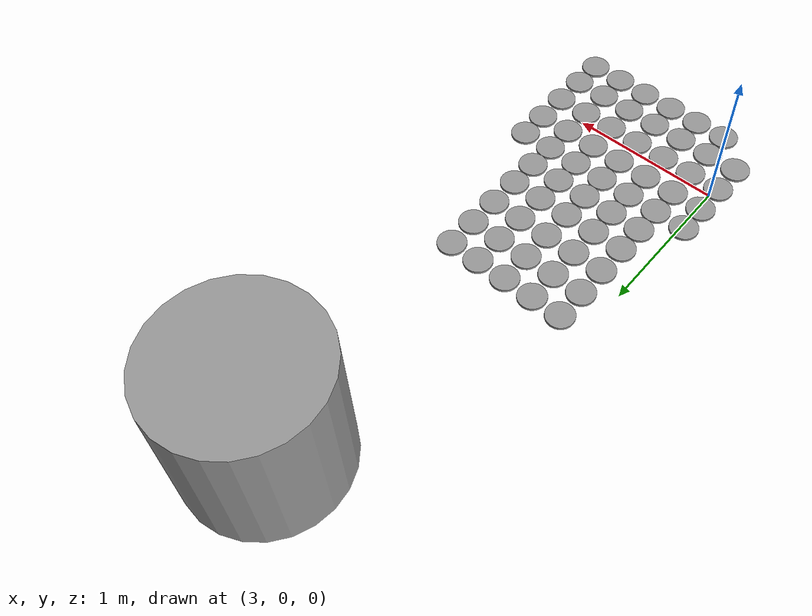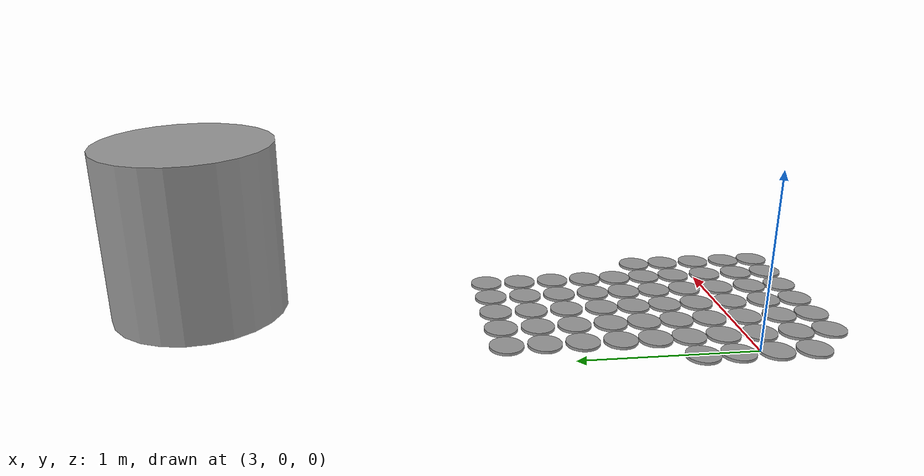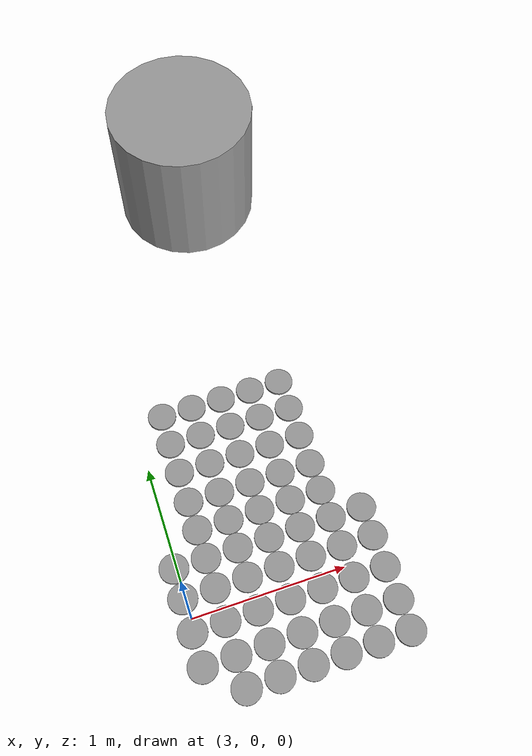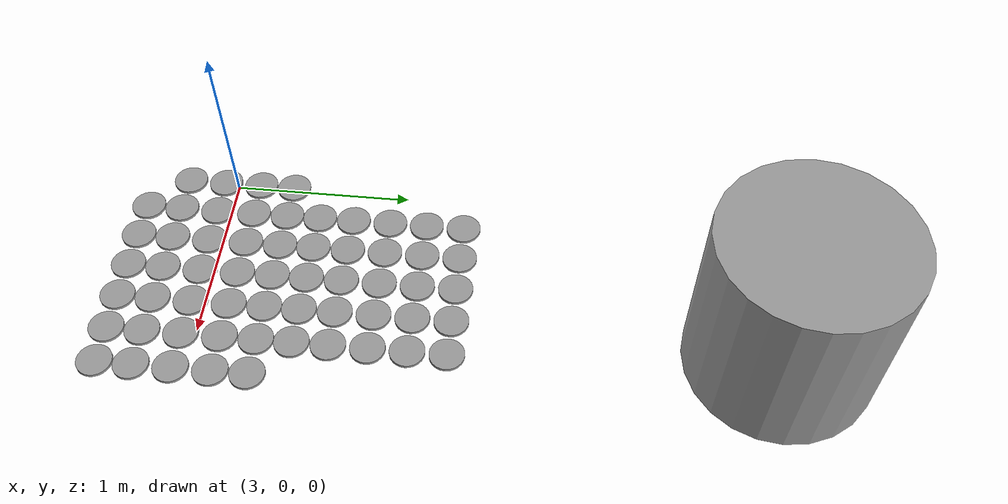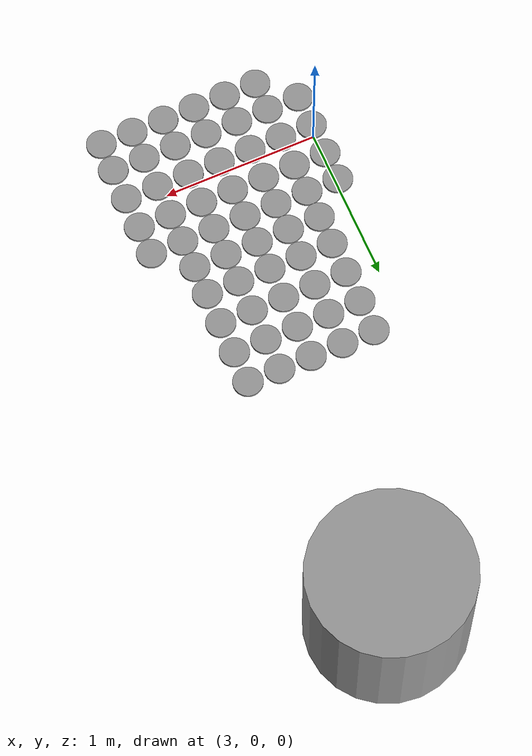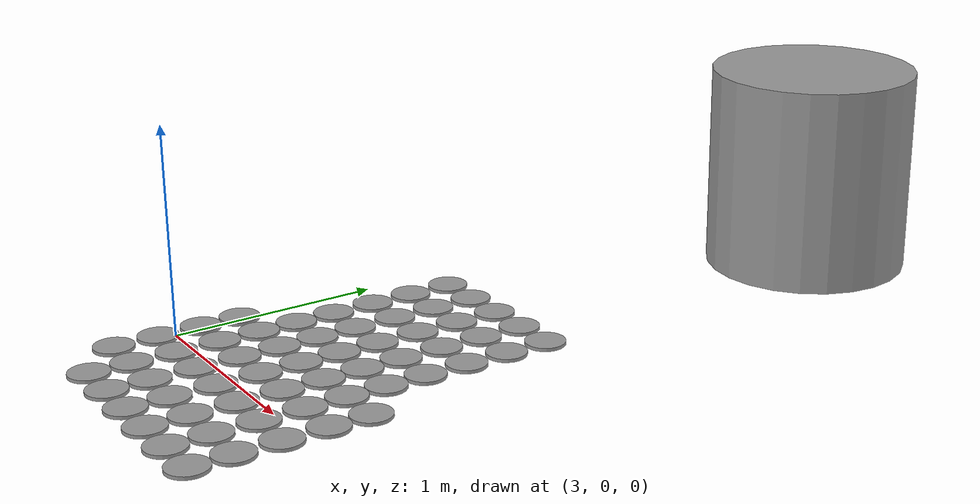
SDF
<sdf version="1.6">
 <world name="default">
  <model name="unit_cylinder_clone_195">
   <pose>3.19 0.515077 0.008117 0 -0 0</pose>
   <link name="link">
    <inertial>
     <mass>1</mass>
     <inertia><ixx>0.145833</ixx><ixy>0</ixy><ixz>0</ixz><iyy>0.145833</iyy><iyz>0</iyz><izz>0.125</izz></inertia>
    </inertial>
    <collision name="collision">
     <geometry><cylinder><radius>0.0950718</radius><length>0.0162339</length></cylinder></geometry>
     <max_contacts>5</max_contacts>
    </collision>
    <visual name="visual">
     <geometry><cylinder><radius>0.0950718</radius><length>0.0162339</length></cylinder></geometry>
     <material>
      <script><name>Gazebo/Grey</name><uri>file://media/materials/scripts/gazebo.material</uri></script>
     </material>
    </visual>
   </link>
  </model>
  <model name="unit_cylinder_clone_196">
   <pose>3.19 0.71 0.008117 0 -0 0</pose>
   <link name="link">
    <inertial>
     <mass>1</mass>
     <inertia><ixx>0.145833</ixx><ixy>0</ixy><ixz>0</ixz><iyy>0.145833</iyy><iyz>0</iyz><izz>0.125</izz></inertia>
    </inertial>
    <collision name="collision">
     <geometry><cylinder><radius>0.0950718</radius><length>0.0162339</length></cylinder></geometry>
     <max_contacts>5</max_contacts>
    </collision>
    <visual name="visual">
     <geometry><cylinder><radius>0.0950718</radius><length>0.0162339</length></cylinder></geometry>
     <material>
      <script><name>Gazebo/Grey</name><uri>file://media/materials/scripts/gazebo.material</uri></script>
     </material>
    </visual>
   </link>
  </model>
  <model name="unit_cylinder_clone_197">
   <pose>3.19 0.92 0.008117 0 -0 0</pose>
   <link name="link">
    <inertial>
     <mass>1</mass>
     <inertia><ixx>0.145833</ixx><ixy>0</ixy><ixz>0</ixz><iyy>0.145833</iyy><iyz>0</iyz><izz>0.125</izz></inertia>
    </inertial>
    <collision name="collision">
     <geometry><cylinder><radius>0.0950718</radius><length>0.0162339</length></cylinder></geometry>
     <max_contacts>5</max_contacts>
    </collision>
    <visual name="visual">
     <geometry><cylinder><radius>0.0950718</radius><length>0.0162339</length></cylinder></geometry>
     <material>
      <script><name>Gazebo/Grey</name><uri>file://media/materials/scripts/gazebo.material</uri></script>
     </material>
    </visual>
   </link>
  </model>
  <model name="unit_cylinder_clone_198">
   <pose>3.19 1.13 0.008117 0 -0 0</pose>
   <link name="link">
    <inertial>
     <mass>1</mass>
     <inertia><ixx>0.145833</ixx><ixy>0</ixy><ixz>0</ixz><iyy>0.145833</iyy><iyz>0</iyz><izz>0.125</izz></inertia>
    </inertial>
    <collision name="collision">
     <geometry><cylinder><radius>0.0950718</radius><length>0.0162339</length></cylinder></geometry>
     <max_contacts>5</max_contacts>
    </collision>
    <visual name="visual">
     <geometry><cylinder><radius>0.0950718</radius><length>0.0162339</length></cylinder></geometry>
     <material>
      <script><name>Gazebo/Grey</name><uri>file://media/materials/scripts/gazebo.material</uri></script>
     </material>
    </visual>
   </link>
  </model>
  <model name="unit_cylinder_clone_199">
   <pose>3.19 1.34 0.008117 0 -0 0</pose>
   <link name="link">
    <inertial>
     <mass>1</mass>
     <inertia><ixx>0.145833</ixx><ixy>0</ixy><ixz>0</ixz><iyy>0.145833</iyy><iyz>0</iyz><izz>0.125</izz></inertia>
    </inertial>
    <collision name="collision">
     <geometry><cylinder><radius>0.0950718</radius><length>0.0162339</length></cylinder></geometry>
     <max_contacts>5</max_contacts>
    </collision>
    <visual name="visual">
     <geometry><cylinder><radius>0.0950718</radius><length>0.0162339</length></cylinder></geometry>
     <material>
      <script><name>Gazebo/Grey</name><uri>file://media/materials/scripts/gazebo.material</uri></script>
     </material>
    </visual>
   </link>
  </model>
  <model name="unit_cylinder_clone_200">
   <pose>3.4 0.515077 0.008117 0 -0 0</pose>
   <link name="link">
    <inertial>
     <mass>1</mass>
     <inertia><ixx>0.145833</ixx><ixy>0</ixy><ixz>0</ixz><iyy>0.145833</iyy><iyz>0</iyz><izz>0.125</izz></inertia>
    </inertial>
    <collision name="collision">
     <geometry><cylinder><radius>0.0950718</radius><length>0.0162339</length></cylinder></geometry>
     <max_contacts>5</max_contacts>
    </collision>
    <visual name="visual">
     <geometry><cylinder><radius>0.0950718</radius><length>0.0162339</length></cylinder></geometry>
     <material>
      <script><name>Gazebo/Grey</name><uri>file://media/materials/scripts/gazebo.material</uri></script>
     </material>
    </visual>
   </link>
  </model>
  <model name="unit_cylinder_clone_201">
   <pose>3.4 0.71 0.008117 0 -0 0</pose>
   <link name="link">
    <inertial>
     <mass>1</mass>
     <inertia><ixx>0.145833</ixx><ixy>0</ixy><ixz>0</ixz><iyy>0.145833</iyy><iyz>0</iyz><izz>0.125</izz></inertia>
    </inertial>
    <collision name="collision">
     <geometry><cylinder><radius>0.0950718</radius><length>0.0162339</length></cylinder></geometry>
     <max_contacts>5</max_contacts>
    </collision>
    <visual name="visual">
     <geometry><cylinder><radius>0.0950718</radius><length>0.0162339</length></cylinder></geometry>
     <material>
      <script><name>Gazebo/Grey</name><uri>file://media/materials/scripts/gazebo.material</uri></script>
     </material>
    </visual>
   </link>
  </model>
  <model name="unit_cylinder_clone_202">
   <pose>3.4 0.92 0.008117 0 -0 0</pose>
   <link name="link">
    <inertial>
     <mass>1</mass>
     <inertia><ixx>0.145833</ixx><ixy>0</ixy><ixz>0</ixz><iyy>0.145833</iyy><iyz>0</iyz><izz>0.125</izz></inertia>
    </inertial>
    <collision name="collision">
     <geometry><cylinder><radius>0.0950718</radius><length>0.0162339</length></cylinder></geometry>
     <max_contacts>5</max_contacts>
    </collision>
    <visual name="visual">
     <geometry><cylinder><radius>0.0950718</radius><length>0.0162339</length></cylinder></geometry>
     <material>
      <script><name>Gazebo/Grey</name><uri>file://media/materials/scripts/gazebo.material</uri></script>
     </material>
    </visual>
   </link>
  </model>
  <model name="unit_cylinder_clone_203">
   <pose>3.4 1.13 0.008117 0 -0 0</pose>
   <link name="link">
    <inertial>
     <mass>1</mass>
     <inertia><ixx>0.145833</ixx><ixy>0</ixy><ixz>0</ixz><iyy>0.145833</iyy><iyz>0</iyz><izz>0.125</izz></inertia>
    </inertial>
    <collision name="collision">
     <geometry><cylinder><radius>0.0950718</radius><length>0.0162339</length></cylinder></geometry>
     <max_contacts>5</max_contacts>
    </collision>
    <visual name="visual">
     <geometry><cylinder><radius>0.0950718</radius><length>0.0162339</length></cylinder></geometry>
     <material>
      <script><name>Gazebo/Grey</name><uri>file://media/materials/scripts/gazebo.material</uri></script>
     </material>
    </visual>
   </link>
  </model>
  <model name="unit_cylinder_clone_204">
   <pose>3.4 1.34 0.008117 0 -0 0</pose>
   <link name="link">
    <inertial>
     <mass>1</mass>
     <inertia><ixx>0.145833</ixx><ixy>0</ixy><ixz>0</ixz><iyy>0.145833</iyy><iyz>0</iyz><izz>0.125</izz></inertia>
    </inertial>
    <collision name="collision">
     <geometry><cylinder><radius>0.0950718</radius><length>0.0162339</length></cylinder></geometry>
     <max_contacts>5</max_contacts>
    </collision>
    <visual name="visual">
     <geometry><cylinder><radius>0.0950718</radius><length>0.0162339</length></cylinder></geometry>
     <material>
      <script><name>Gazebo/Grey</name><uri>file://media/materials/scripts/gazebo.material</uri></script>
     </material>
    </visual>
   </link>
  </model>
  <model name="unit_cylinder_clone_205">
   <pose>3.61 0.515077 0.008117 0 -0 0</pose>
   <link name="link">
    <inertial>
     <mass>1</mass>
     <inertia><ixx>0.145833</ixx><ixy>0</ixy><ixz>0</ixz><iyy>0.145833</iyy><iyz>0</iyz><izz>0.125</izz></inertia>
    </inertial>
    <collision name="collision">
     <geometry><cylinder><radius>0.0950718</radius><length>0.0162339</length></cylinder></geometry>
     <max_contacts>5</max_contacts>
    </collision>
    <visual name="visual">
     <geometry><cylinder><radius>0.0950718</radius><length>0.0162339</length></cylinder></geometry>
     <material>
      <script><name>Gazebo/Grey</name><uri>file://media/materials/scripts/gazebo.material</uri></script>
     </material>
    </visual>
   </link>
  </model>
  <model name="unit_cylinder_clone_206">
   <pose>3.61 0.71 0.008117 0 -0 0</pose>
   <link name="link">
    <inertial>
     <mass>1</mass>
     <inertia><ixx>0.145833</ixx><ixy>0</ixy><ixz>0</ixz><iyy>0.145833</iyy><iyz>0</iyz><izz>0.125</izz></inertia>
    </inertial>
    <collision name="collision">
     <geometry><cylinder><radius>0.0950718</radius><length>0.0162339</length></cylinder></geometry>
     <max_contacts>5</max_contacts>
    </collision>
    <visual name="visual">
     <geometry><cylinder><radius>0.0950718</radius><length>0.0162339</length></cylinder></geometry>
     <material>
      <script><name>Gazebo/Grey</name><uri>file://media/materials/scripts/gazebo.material</uri></script>
     </material>
    </visual>
   </link>
  </model>
  <model name="unit_cylinder_clone_207">
   <pose>3.61 0.92 0.008117 0 -0 0</pose>
   <link name="link">
    <inertial>
     <mass>1</mass>
     <inertia><ixx>0.145833</ixx><ixy>0</ixy><ixz>0</ixz><iyy>0.145833</iyy><iyz>0</iyz><izz>0.125</izz></inertia>
    </inertial>
    <collision name="collision">
     <geometry><cylinder><radius>0.0950718</radius><length>0.0162339</length></cylinder></geometry>
     <max_contacts>5</max_contacts>
    </collision>
    <visual name="visual">
     <geometry><cylinder><radius>0.0950718</radius><length>0.0162339</length></cylinder></geometry>
     <material>
      <script><name>Gazebo/Grey</name><uri>file://media/materials/scripts/gazebo.material</uri></script>
     </material>
    </visual>
   </link>
  </model>
  <model name="unit_cylinder_clone_208">
   <pose>3.61 1.13 0.008117 0 -0 0</pose>
   <link name="link">
    <inertial>
     <mass>1</mass>
     <inertia><ixx>0.145833</ixx><ixy>0</ixy><ixz>0</ixz><iyy>0.145833</iyy><iyz>0</iyz><izz>0.125</izz></inertia>
    </inertial>
    <collision name="collision">
     <geometry><cylinder><radius>0.0950718</radius><length>0.0162339</length></cylinder></geometry>
     <max_contacts>5</max_contacts>
    </collision>
    <visual name="visual">
     <geometry><cylinder><radius>0.0950718</radius><length>0.0162339</length></cylinder></geometry>
     <material>
      <script><name>Gazebo/Grey</name><uri>file://media/materials/scripts/gazebo.material</uri></script>
     </material>
    </visual>
   </link>
  </model>
  <model name="unit_cylinder_clone_209">
   <pose>3.61 1.34 0.008117 0 -0 0</pose>
   <link name="link">
    <inertial>
     <mass>1</mass>
     <inertia><ixx>0.145833</ixx><ixy>0</ixy><ixz>0</ixz><iyy>0.145833</iyy><iyz>0</iyz><izz>0.125</izz></inertia>
    </inertial>
    <collision name="collision">
     <geometry><cylinder><radius>0.0950718</radius><length>0.0162339</length></cylinder></geometry>
     <max_contacts>5</max_contacts>
    </collision>
    <visual name="visual">
     <geometry><cylinder><radius>0.0950718</radius><length>0.0162339</length></cylinder></geometry>
     <material>
      <script><name>Gazebo/Grey</name><uri>file://media/materials/scripts/gazebo.material</uri></script>
     </material>
    </visual>
   </link>
  </model>
  <model name="unit_cylinder_clone_210">
   <pose>3.82 0.515077 0.008117 0 -0 0</pose>
   <link name="link">
    <inertial>
     <mass>1</mass>
     <inertia><ixx>0.145833</ixx><ixy>0</ixy><ixz>0</ixz><iyy>0.145833</iyy><iyz>0</iyz><izz>0.125</izz></inertia>
    </inertial>
    <collision name="collision">
     <geometry><cylinder><radius>0.0950718</radius><length>0.0162339</length></cylinder></geometry>
     <max_contacts>5</max_contacts>
    </collision>
    <visual name="visual">
     <geometry><cylinder><radius>0.0950718</radius><length>0.0162339</length></cylinder></geometry>
     <material>
      <script><name>Gazebo/Grey</name><uri>file://media/materials/scripts/gazebo.material</uri></script>
     </material>
    </visual>
   </link>
  </model>
  <model name="unit_cylinder_clone_211">
   <pose>3.82 0.71 0.008117 0 -0 0</pose>
   <link name="link">
    <inertial>
     <mass>1</mass>
     <inertia><ixx>0.145833</ixx><ixy>0</ixy><ixz>0</ixz><iyy>0.145833</iyy><iyz>0</iyz><izz>0.125</izz></inertia>
    </inertial>
    <collision name="collision">
     <geometry><cylinder><radius>0.0950718</radius><length>0.0162339</length></cylinder></geometry>
     <max_contacts>5</max_contacts>
    </collision>
    <visual name="visual">
     <geometry><cylinder><radius>0.0950718</radius><length>0.0162339</length></cylinder></geometry>
     <material>
      <script><name>Gazebo/Grey</name><uri>file://media/materials/scripts/gazebo.material</uri></script>
     </material>
    </visual>
   </link>
  </model>
  <model name="unit_cylinder_clone_212">
   <pose>3.82 0.92 0.008117 0 -0 0</pose>
   <link name="link">
    <inertial>
     <mass>1</mass>
     <inertia><ixx>0.145833</ixx><ixy>0</ixy><ixz>0</ixz><iyy>0.145833</iyy><iyz>0</iyz><izz>0.125</izz></inertia>
    </inertial>
    <collision name="collision">
     <geometry><cylinder><radius>0.0950718</radius><length>0.0162339</length></cylinder></geometry>
     <max_contacts>5</max_contacts>
    </collision>
    <visual name="visual">
     <geometry><cylinder><radius>0.0950718</radius><length>0.0162339</length></cylinder></geometry>
     <material>
      <script><name>Gazebo/Grey</name><uri>file://media/materials/scripts/gazebo.material</uri></script>
     </material>
    </visual>
   </link>
  </model>
  <model name="unit_cylinder_clone_213">
   <pose>3.82 1.13 0.008117 0 -0 0</pose>
   <link name="link">
    <inertial>
     <mass>1</mass>
     <inertia><ixx>0.145833</ixx><ixy>0</ixy><ixz>0</ixz><iyy>0.145833</iyy><iyz>0</iyz><izz>0.125</izz></inertia>
    </inertial>
    <collision name="collision">
     <geometry><cylinder><radius>0.0950718</radius><length>0.0162339</length></cylinder></geometry>
     <max_contacts>5</max_contacts>
    </collision>
    <visual name="visual">
     <geometry><cylinder><radius>0.0950718</radius><length>0.0162339</length></cylinder></geometry>
     <material>
      <script><name>Gazebo/Grey</name><uri>file://media/materials/scripts/gazebo.material</uri></script>
     </material>
    </visual>
   </link>
  </model>
  <model name="unit_cylinder_clone_214">
   <pose>3.82 1.34 0.008117 0 -0 0</pose>
   <link name="link">
    <inertial>
     <mass>1</mass>
     <inertia><ixx>0.145833</ixx><ixy>0</ixy><ixz>0</ixz><iyy>0.145833</iyy><iyz>0</iyz><izz>0.125</izz></inertia>
    </inertial>
    <collision name="collision">
     <geometry><cylinder><radius>0.0950718</radius><length>0.0162339</length></cylinder></geometry>
     <max_contacts>5</max_contacts>
    </collision>
    <visual name="visual">
     <geometry><cylinder><radius>0.0950718</radius><length>0.0162339</length></cylinder></geometry>
     <material>
      <script><name>Gazebo/Grey</name><uri>file://media/materials/scripts/gazebo.material</uri></script>
     </material>
    </visual>
   </link>
  </model>
  <model name="unit_cylinder_clone_215">
   <pose>4.03 0.515077 0.008117 0 -0 0</pose>
   <link name="link">
    <inertial>
     <mass>1</mass>
     <inertia><ixx>0.145833</ixx><ixy>0</ixy><ixz>0</ixz><iyy>0.145833</iyy><iyz>0</iyz><izz>0.125</izz></inertia>
    </inertial>
    <collision name="collision">
     <geometry><cylinder><radius>0.0950718</radius><length>0.0162339</length></cylinder></geometry>
     <max_contacts>5</max_contacts>
    </collision>
    <visual name="visual">
     <geometry><cylinder><radius>0.0950718</radius><length>0.0162339</length></cylinder></geometry>
     <material>
      <script><name>Gazebo/Grey</name><uri>file://media/materials/scripts/gazebo.material</uri></script>
     </material>
    </visual>
   </link>
  </model>
  <model name="unit_cylinder_clone_216">
   <pose>4.03 0.71 0.008117 0 -0 0</pose>
   <link name="link">
    <inertial>
     <mass>1</mass>
     <inertia><ixx>0.145833</ixx><ixy>0</ixy><ixz>0</ixz><iyy>0.145833</iyy><iyz>0</iyz><izz>0.125</izz></inertia>
    </inertial>
    <collision name="collision">
     <geometry><cylinder><radius>0.0950718</radius><length>0.0162339</length></cylinder></geometry>
     <max_contacts>5</max_contacts>
    </collision>
    <visual name="visual">
     <geometry><cylinder><radius>0.0950718</radius><length>0.0162339</length></cylinder></geometry>
     <material>
      <script><name>Gazebo/Grey</name><uri>file://media/materials/scripts/gazebo.material</uri></script>
     </material>
    </visual>
   </link>
  </model>
  <model name="unit_cylinder_clone_217">
   <pose>4.03 0.92 0.008117 0 -0 0</pose>
   <link name="link">
    <inertial>
     <mass>1</mass>
     <inertia><ixx>0.145833</ixx><ixy>0</ixy><ixz>0</ixz><iyy>0.145833</iyy><iyz>0</iyz><izz>0.125</izz></inertia>
    </inertial>
    <collision name="collision">
     <geometry><cylinder><radius>0.0950718</radius><length>0.0162339</length></cylinder></geometry>
     <max_contacts>5</max_contacts>
    </collision>
    <visual name="visual">
     <geometry><cylinder><radius>0.0950718</radius><length>0.0162339</length></cylinder></geometry>
     <material>
      <script><name>Gazebo/Grey</name><uri>file://media/materials/scripts/gazebo.material</uri></script>
     </material>
    </visual>
   </link>
  </model>
  <model name="unit_cylinder_clone_218">
   <pose>4.03 1.13 0.008117 0 -0 0</pose>
   <link name="link">
    <inertial>
     <mass>1</mass>
     <inertia><ixx>0.145833</ixx><ixy>0</ixy><ixz>0</ixz><iyy>0.145833</iyy><iyz>0</iyz><izz>0.125</izz></inertia>
    </inertial>
    <collision name="collision">
     <geometry><cylinder><radius>0.0950718</radius><length>0.0162339</length></cylinder></geometry>
     <max_contacts>5</max_contacts>
    </collision>
    <visual name="visual">
     <geometry><cylinder><radius>0.0950718</radius><length>0.0162339</length></cylinder></geometry>
     <material>
      <script><name>Gazebo/Grey</name><uri>file://media/materials/scripts/gazebo.material</uri></script>
     </material>
    </visual>
   </link>
  </model>
  <model name="unit_cylinder_clone_219">
   <pose>4.03 1.34 0.008117 0 -0 0</pose>
   <link name="link">
    <inertial>
     <mass>1</mass>
     <inertia><ixx>0.145833</ixx><ixy>0</ixy><ixz>0</ixz><iyy>0.145833</iyy><iyz>0</iyz><izz>0.125</izz></inertia>
    </inertial>
    <collision name="collision">
     <geometry><cylinder><radius>0.0950718</radius><length>0.0162339</length></cylinder></geometry>
     <max_contacts>5</max_contacts>
    </collision>
    <visual name="visual">
     <geometry><cylinder><radius>0.0950718</radius><length>0.0162339</length></cylinder></geometry>
     <material>
      <script><name>Gazebo/Grey</name><uri>file://media/materials/scripts/gazebo.material</uri></script>
     </material>
    </visual>
   </link>
  </model>
  <model name="unit_cylinder_clone_441">
   <pose>2.98 -0.29 0.008117 0 -0 0</pose>
   <link name="link">
    <inertial>
     <mass>1</mass>
     <inertia><ixx>0.145833</ixx><ixy>0</ixy><ixz>0</ixz><iyy>0.145833</iyy><iyz>0</iyz><izz>0.125</izz></inertia>
    </inertial>
    <collision name="collision">
     <geometry><cylinder><radius>0.0950718</radius><length>0.0162339</length></cylinder></geometry>
     <max_contacts>5</max_contacts>
    </collision>
    <visual name="visual">
     <geometry><cylinder><radius>0.0950718</radius><length>0.0162339</length></cylinder></geometry>
     <material>
      <script><name>Gazebo/Grey</name><uri>file://media/materials/scripts/gazebo.material</uri></script>
     </material>
    </visual>
   </link>
  </model>
  <model name="unit_cylinder_clone_442">
   <pose>2.98 -0.08 0.008117 0 -0 0</pose>
   <link name="link">
    <inertial>
     <mass>1</mass>
     <inertia><ixx>0.145833</ixx><ixy>0</ixy><ixz>0</ixz><iyy>0.145833</iyy><iyz>0</iyz><izz>0.125</izz></inertia>
    </inertial>
    <collision name="collision">
     <geometry><cylinder><radius>0.0950718</radius><length>0.0162339</length></cylinder></geometry>
     <max_contacts>5</max_contacts>
    </collision>
    <visual name="visual">
     <geometry><cylinder><radius>0.0950718</radius><length>0.0162339</length></cylinder></geometry>
     <material>
      <script><name>Gazebo/Grey</name><uri>file://media/materials/scripts/gazebo.material</uri></script>
     </material>
    </visual>
   </link>
  </model>
  <model name="unit_cylinder_clone_443">
   <pose>2.98 0.13 0.008117 0 -0 0</pose>
   <link name="link">
    <inertial>
     <mass>1</mass>
     <inertia><ixx>0.145833</ixx><ixy>0</ixy><ixz>0</ixz><iyy>0.145833</iyy><iyz>0</iyz><izz>0.125</izz></inertia>
    </inertial>
    <collision name="collision">
     <geometry><cylinder><radius>0.0950718</radius><length>0.0162339</length></cylinder></geometry>
     <max_contacts>5</max_contacts>
    </collision>
    <visual name="visual">
     <geometry><cylinder><radius>0.0950718</radius><length>0.0162339</length></cylinder></geometry>
     <material>
      <script><name>Gazebo/Grey</name><uri>file://media/materials/scripts/gazebo.material</uri></script>
     </material>
    </visual>
   </link>
  </model>
  <model name="unit_cylinder_clone_444">
   <pose>2.98 0.324923 0.008117 -0 -0 -0</pose>
   <link name="link">
    <inertial>
     <mass>1</mass>
     <inertia><ixx>0.145833</ixx><ixy>0</ixy><ixz>0</ixz><iyy>0.145833</iyy><iyz>0</iyz><izz>0.125</izz></inertia>
    </inertial>
    <collision name="collision">
     <geometry><cylinder><radius>0.0950718</radius><length>0.0162339</length></cylinder></geometry>
     <max_contacts>5</max_contacts>
    </collision>
    <visual name="visual">
     <geometry><cylinder><radius>0.0950718</radius><length>0.0162339</length></cylinder></geometry>
     <material>
      <script><name>Gazebo/Grey</name><uri>file://media/materials/scripts/gazebo.material</uri></script>
     </material>
    </visual>
   </link>
  </model>
  <model name="unit_cylinder_clone_445">
   <pose>3.19 -0.484923 0.008117 0 -0 0</pose>
   <link name="link">
    <inertial>
     <mass>1</mass>
     <inertia><ixx>0.145833</ixx><ixy>0</ixy><ixz>0</ixz><iyy>0.145833</iyy><iyz>0</iyz><izz>0.125</izz></inertia>
    </inertial>
    <collision name="collision">
     <geometry><cylinder><radius>0.0950718</radius><length>0.0162339</length></cylinder></geometry>
     <max_contacts>5</max_contacts>
    </collision>
    <visual name="visual">
     <geometry><cylinder><radius>0.0950718</radius><length>0.0162339</length></cylinder></geometry>
     <material>
      <script><name>Gazebo/Grey</name><uri>file://media/materials/scripts/gazebo.material</uri></script>
     </material>
    </visual>
   </link>
  </model>
  <model name="unit_cylinder_clone_446">
   <pose>3.19 -0.29 0.008117 0 -0 0</pose>
   <link name="link">
    <inertial>
     <mass>1</mass>
     <inertia><ixx>0.145833</ixx><ixy>0</ixy><ixz>0</ixz><iyy>0.145833</iyy><iyz>0</iyz><izz>0.125</izz></inertia>
    </inertial>
    <collision name="collision">
     <geometry><cylinder><radius>0.0950718</radius><length>0.0162339</length></cylinder></geometry>
     <max_contacts>5</max_contacts>
    </collision>
    <visual name="visual">
     <geometry><cylinder><radius>0.0950718</radius><length>0.0162339</length></cylinder></geometry>
     <material>
      <script><name>Gazebo/Grey</name><uri>file://media/materials/scripts/gazebo.material</uri></script>
     </material>
    </visual>
   </link>
  </model>
  <model name="unit_cylinder_clone_447">
   <pose>3.19 -0.08 0.008117 0 -0 0</pose>
   <link name="link">
    <inertial>
     <mass>1</mass>
     <inertia><ixx>0.145833</ixx><ixy>0</ixy><ixz>0</ixz><iyy>0.145833</iyy><iyz>0</iyz><izz>0.125</izz></inertia>
    </inertial>
    <collision name="collision">
     <geometry><cylinder><radius>0.0950718</radius><length>0.0162339</length></cylinder></geometry>
     <max_contacts>5</max_contacts>
    </collision>
    <visual name="visual">
     <geometry><cylinder><radius>0.0950718</radius><length>0.0162339</length></cylinder></geometry>
     <material>
      <script><name>Gazebo/Grey</name><uri>file://media/materials/scripts/gazebo.material</uri></script>
     </material>
    </visual>
   </link>
  </model>
  <model name="unit_cylinder_clone_448">
   <pose>3.19 0.13 0.008117 0 -0 0</pose>
   <link name="link">
    <inertial>
     <mass>1</mass>
     <inertia><ixx>0.145833</ixx><ixy>0</ixy><ixz>0</ixz><iyy>0.145833</iyy><iyz>0</iyz><izz>0.125</izz></inertia>
    </inertial>
    <collision name="collision">
     <geometry><cylinder><radius>0.0950718</radius><length>0.0162339</length></cylinder></geometry>
     <max_contacts>5</max_contacts>
    </collision>
    <visual name="visual">
     <geometry><cylinder><radius>0.0950718</radius><length>0.0162339</length></cylinder></geometry>
     <material>
      <script><name>Gazebo/Grey</name><uri>file://media/materials/scripts/gazebo.material</uri></script>
     </material>
    </visual>
   </link>
  </model>
  <model name="unit_cylinder_clone_449">
   <pose>3.19 0.324923 0.008117 -0 -0 -0</pose>
   <link name="link">
    <inertial>
     <mass>1</mass>
     <inertia><ixx>0.145833</ixx><ixy>0</ixy><ixz>0</ixz><iyy>0.145833</iyy><iyz>0</iyz><izz>0.125</izz></inertia>
    </inertial>
    <collision name="collision">
     <geometry><cylinder><radius>0.0950718</radius><length>0.0162339</length></cylinder></geometry>
     <max_contacts>5</max_contacts>
    </collision>
    <visual name="visual">
     <geometry><cylinder><radius>0.0950718</radius><length>0.0162339</length></cylinder></geometry>
     <material>
      <script><name>Gazebo/Grey</name><uri>file://media/materials/scripts/gazebo.material</uri></script>
     </material>
    </visual>
   </link>
  </model>
  <model name="unit_cylinder_clone_450">
   <pose>3.4 -0.484923 0.008117 0 -0 0</pose>
   <link name="link">
    <inertial>
     <mass>1</mass>
     <inertia><ixx>0.145833</ixx><ixy>0</ixy><ixz>0</ixz><iyy>0.145833</iyy><iyz>0</iyz><izz>0.125</izz></inertia>
    </inertial>
    <collision name="collision">
     <geometry><cylinder><radius>0.0950718</radius><length>0.0162339</length></cylinder></geometry>
     <max_contacts>5</max_contacts>
    </collision>
    <visual name="visual">
     <geometry><cylinder><radius>0.0950718</radius><length>0.0162339</length></cylinder></geometry>
     <material>
      <script><name>Gazebo/Grey</name><uri>file://media/materials/scripts/gazebo.material</uri></script>
     </material>
    </visual>
   </link>
  </model>
  <model name="unit_cylinder_clone_451">
   <pose>3.4 -0.29 0.008117 0 -0 0</pose>
   <link name="link">
    <inertial>
     <mass>1</mass>
     <inertia><ixx>0.145833</ixx><ixy>0</ixy><ixz>0</ixz><iyy>0.145833</iyy><iyz>0</iyz><izz>0.125</izz></inertia>
    </inertial>
    <collision name="collision">
     <geometry><cylinder><radius>0.0950718</radius><length>0.0162339</length></cylinder></geometry>
     <max_contacts>5</max_contacts>
    </collision>
    <visual name="visual">
     <geometry><cylinder><radius>0.0950718</radius><length>0.0162339</length></cylinder></geometry>
     <material>
      <script><name>Gazebo/Grey</name><uri>file://media/materials/scripts/gazebo.material</uri></script>
     </material>
    </visual>
   </link>
  </model>
  <model name="unit_cylinder_clone_452">
   <pose>3.4 -0.08 0.008117 0 -0 0</pose>
   <link name="link">
    <inertial>
     <mass>1</mass>
     <inertia><ixx>0.145833</ixx><ixy>0</ixy><ixz>0</ixz><iyy>0.145833</iyy><iyz>0</iyz><izz>0.125</izz></inertia>
    </inertial>
    <collision name="collision">
     <geometry><cylinder><radius>0.0950718</radius><length>0.0162339</length></cylinder></geometry>
     <max_contacts>5</max_contacts>
    </collision>
    <visual name="visual">
     <geometry><cylinder><radius>0.0950718</radius><length>0.0162339</length></cylinder></geometry>
     <material>
      <script><name>Gazebo/Grey</name><uri>file://media/materials/scripts/gazebo.material</uri></script>
     </material>
    </visual>
   </link>
  </model>
  <model name="unit_cylinder_clone_453">
   <pose>3.4 0.13 0.008117 0 -0 0</pose>
   <link name="link">
    <inertial>
     <mass>1</mass>
     <inertia><ixx>0.145833</ixx><ixy>0</ixy><ixz>0</ixz><iyy>0.145833</iyy><iyz>0</iyz><izz>0.125</izz></inertia>
    </inertial>
    <collision name="collision">
     <geometry><cylinder><radius>0.0950718</radius><length>0.0162339</length></cylinder></geometry>
     <max_contacts>5</max_contacts>
    </collision>
    <visual name="visual">
     <geometry><cylinder><radius>0.0950718</radius><length>0.0162339</length></cylinder></geometry>
     <material>
      <script><name>Gazebo/Grey</name><uri>file://media/materials/scripts/gazebo.material</uri></script>
     </material>
    </visual>
   </link>
  </model>
  <model name="unit_cylinder_clone_454">
   <pose>3.4 0.324923 0.008117 -0 -0 -0</pose>
   <link name="link">
    <inertial>
     <mass>1</mass>
     <inertia><ixx>0.145833</ixx><ixy>0</ixy><ixz>0</ixz><iyy>0.145833</iyy><iyz>0</iyz><izz>0.125</izz></inertia>
    </inertial>
    <collision name="collision">
     <geometry><cylinder><radius>0.0950718</radius><length>0.0162339</length></cylinder></geometry>
     <max_contacts>5</max_contacts>
    </collision>
    <visual name="visual">
     <geometry><cylinder><radius>0.0950718</radius><length>0.0162339</length></cylinder></geometry>
     <material>
      <script><name>Gazebo/Grey</name><uri>file://media/materials/scripts/gazebo.material</uri></script>
     </material>
    </visual>
   </link>
  </model>
  <model name="unit_cylinder_clone_455">
   <pose>3.61 -0.484923 0.008117 0 -0 0</pose>
   <link name="link">
    <inertial>
     <mass>1</mass>
     <inertia><ixx>0.145833</ixx><ixy>0</ixy><ixz>0</ixz><iyy>0.145833</iyy><iyz>0</iyz><izz>0.125</izz></inertia>
    </inertial>
    <collision name="collision">
     <geometry><cylinder><radius>0.0950718</radius><length>0.0162339</length></cylinder></geometry>
     <max_contacts>5</max_contacts>
    </collision>
    <visual name="visual">
     <geometry><cylinder><radius>0.0950718</radius><length>0.0162339</length></cylinder></geometry>
     <material>
      <script><name>Gazebo/Grey</name><uri>file://media/materials/scripts/gazebo.material</uri></script>
     </material>
    </visual>
   </link>
  </model>
  <model name="unit_cylinder_clone_456">
   <pose>3.61 -0.29 0.008117 0 -0 0</pose>
   <link name="link">
    <inertial>
     <mass>1</mass>
     <inertia><ixx>0.145833</ixx><ixy>0</ixy><ixz>0</ixz><iyy>0.145833</iyy><iyz>0</iyz><izz>0.125</izz></inertia>
    </inertial>
    <collision name="collision">
     <geometry><cylinder><radius>0.0950718</radius><length>0.0162339</length></cylinder></geometry>
     <max_contacts>5</max_contacts>
    </collision>
    <visual name="visual">
     <geometry><cylinder><radius>0.0950718</radius><length>0.0162339</length></cylinder></geometry>
     <material>
      <script><name>Gazebo/Grey</name><uri>file://media/materials/scripts/gazebo.material</uri></script>
     </material>
    </visual>
   </link>
  </model>
  <model name="unit_cylinder_clone_457">
   <pose>3.61 -0.08 0.008117 0 -0 0</pose>
   <link name="link">
    <inertial>
     <mass>1</mass>
     <inertia><ixx>0.145833</ixx><ixy>0</ixy><ixz>0</ixz><iyy>0.145833</iyy><iyz>0</iyz><izz>0.125</izz></inertia>
    </inertial>
    <collision name="collision">
     <geometry><cylinder><radius>0.0950718</radius><length>0.0162339</length></cylinder></geometry>
     <max_contacts>5</max_contacts>
    </collision>
    <visual name="visual">
     <geometry><cylinder><radius>0.0950718</radius><length>0.0162339</length></cylinder></geometry>
     <material>
      <script><name>Gazebo/Grey</name><uri>file://media/materials/scripts/gazebo.material</uri></script>
     </material>
    </visual>
   </link>
  </model>
  <model name="unit_cylinder_clone_458">
   <pose>3.61 0.13 0.008117 0 -0 0</pose>
   <link name="link">
    <inertial>
     <mass>1</mass>
     <inertia><ixx>0.145833</ixx><ixy>0</ixy><ixz>0</ixz><iyy>0.145833</iyy><iyz>0</iyz><izz>0.125</izz></inertia>
    </inertial>
    <collision name="collision">
     <geometry><cylinder><radius>0.0950718</radius><length>0.0162339</length></cylinder></geometry>
     <max_contacts>5</max_contacts>
    </collision>
    <visual name="visual">
     <geometry><cylinder><radius>0.0950718</radius><length>0.0162339</length></cylinder></geometry>
     <material>
      <script><name>Gazebo/Grey</name><uri>file://media/materials/scripts/gazebo.material</uri></script>
     </material>
    </visual>
   </link>
  </model>
  <model name="unit_cylinder_clone_459">
   <pose>3.61 0.324923 0.008117 -0 -0 -0</pose>
   <link name="link">
    <inertial>
     <mass>1</mass>
     <inertia><ixx>0.145833</ixx><ixy>0</ixy><ixz>0</ixz><iyy>0.145833</iyy><iyz>0</iyz><izz>0.125</izz></inertia>
    </inertial>
    <collision name="collision">
     <geometry><cylinder><radius>0.0950718</radius><length>0.0162339</length></cylinder></geometry>
     <max_contacts>5</max_contacts>
    </collision>
    <visual name="visual">
     <geometry><cylinder><radius>0.0950718</radius><length>0.0162339</length></cylinder></geometry>
     <material>
      <script><name>Gazebo/Grey</name><uri>file://media/materials/scripts/gazebo.material</uri></script>
     </material>
    </visual>
   </link>
  </model>
  <model name="unit_cylinder_clone_460">
   <pose>3.82 -0.484923 0.008117 0 -0 0</pose>
   <link name="link">
    <inertial>
     <mass>1</mass>
     <inertia><ixx>0.145833</ixx><ixy>0</ixy><ixz>0</ixz><iyy>0.145833</iyy><iyz>0</iyz><izz>0.125</izz></inertia>
    </inertial>
    <collision name="collision">
     <geometry><cylinder><radius>0.0950718</radius><length>0.0162339</length></cylinder></geometry>
     <max_contacts>5</max_contacts>
    </collision>
    <visual name="visual">
     <geometry><cylinder><radius>0.0950718</radius><length>0.0162339</length></cylinder></geometry>
     <material>
      <script><name>Gazebo/Grey</name><uri>file://media/materials/scripts/gazebo.material</uri></script>
     </material>
    </visual>
   </link>
  </model>
  <model name="unit_cylinder_clone_461">
   <pose>3.82 -0.29 0.008117 0 -0 0</pose>
   <link name="link">
    <inertial>
     <mass>1</mass>
     <inertia><ixx>0.145833</ixx><ixy>0</ixy><ixz>0</ixz><iyy>0.145833</iyy><iyz>0</iyz><izz>0.125</izz></inertia>
    </inertial>
    <collision name="collision">
     <geometry><cylinder><radius>0.0950718</radius><length>0.0162339</length></cylinder></geometry>
     <max_contacts>5</max_contacts>
    </collision>
    <visual name="visual">
     <geometry><cylinder><radius>0.0950718</radius><length>0.0162339</length></cylinder></geometry>
     <material>
      <script><name>Gazebo/Grey</name><uri>file://media/materials/scripts/gazebo.material</uri></script>
     </material>
    </visual>
   </link>
  </model>
  <model name="unit_cylinder_clone_462">
   <pose>3.82 -0.08 0.008117 0 -0 0</pose>
   <link name="link">
    <inertial>
     <mass>1</mass>
     <inertia><ixx>0.145833</ixx><ixy>0</ixy><ixz>0</ixz><iyy>0.145833</iyy><iyz>0</iyz><izz>0.125</izz></inertia>
    </inertial>
    <collision name="collision">
     <geometry><cylinder><radius>0.0950718</radius><length>0.0162339</length></cylinder></geometry>
     <max_contacts>5</max_contacts>
    </collision>
    <visual name="visual">
     <geometry><cylinder><radius>0.0950718</radius><length>0.0162339</length></cylinder></geometry>
     <material>
      <script><name>Gazebo/Grey</name><uri>file://media/materials/scripts/gazebo.material</uri></script>
     </material>
    </visual>
   </link>
  </model>
  <model name="unit_cylinder_clone_463">
   <pose>3.82 0.13 0.008117 0 -0 0</pose>
   <link name="link">
    <inertial>
     <mass>1</mass>
     <inertia><ixx>0.145833</ixx><ixy>0</ixy><ixz>0</ixz><iyy>0.145833</iyy><iyz>0</iyz><izz>0.125</izz></inertia>
    </inertial>
    <collision name="collision">
     <geometry><cylinder><radius>0.0950718</radius><length>0.0162339</length></cylinder></geometry>
     <max_contacts>5</max_contacts>
    </collision>
    <visual name="visual">
     <geometry><cylinder><radius>0.0950718</radius><length>0.0162339</length></cylinder></geometry>
     <material>
      <script><name>Gazebo/Grey</name><uri>file://media/materials/scripts/gazebo.material</uri></script>
     </material>
    </visual>
   </link>
  </model>
  <model name="unit_cylinder_clone_464">
   <pose>3.82 0.324923 0.008117 -0 -0 -0</pose>
   <link name="link">
    <inertial>
     <mass>1</mass>
     <inertia><ixx>0.145833</ixx><ixy>0</ixy><ixz>0</ixz><iyy>0.145833</iyy><iyz>0</iyz><izz>0.125</izz></inertia>
    </inertial>
    <collision name="collision">
     <geometry><cylinder><radius>0.0950718</radius><length>0.0162339</length></cylinder></geometry>
     <max_contacts>5</max_contacts>
    </collision>
    <visual name="visual">
     <geometry><cylinder><radius>0.0950718</radius><length>0.0162339</length></cylinder></geometry>
     <material>
      <script><name>Gazebo/Grey</name><uri>file://media/materials/scripts/gazebo.material</uri></script>
     </material>
    </visual>
   </link>
  </model>
  <model name="unit_cylinder_clone_465">
   <pose>4.03 -0.484923 0.008117 0 -0 0</pose>
   <link name="link">
    <inertial>
     <mass>1</mass>
     <inertia><ixx>0.145833</ixx><ixy>0</ixy><ixz>0</ixz><iyy>0.145833</iyy><iyz>0</iyz><izz>0.125</izz></inertia>
    </inertial>
    <collision name="collision">
     <geometry><cylinder><radius>0.0950718</radius><length>0.0162339</length></cylinder></geometry>
     <max_contacts>5</max_contacts>
    </collision>
    <visual name="visual">
     <geometry><cylinder><radius>0.0950718</radius><length>0.0162339</length></cylinder></geometry>
     <material>
      <script><name>Gazebo/Grey</name><uri>file://media/materials/scripts/gazebo.material</uri></script>
     </material>
    </visual>
   </link>
  </model>
  <model name="unit_cylinder_clone_466">
   <pose>4.03 -0.29 0.008117 0 -0 0</pose>
   <link name="link">
    <inertial>
     <mass>1</mass>
     <inertia><ixx>0.145833</ixx><ixy>0</ixy><ixz>0</ixz><iyy>0.145833</iyy><iyz>0</iyz><izz>0.125</izz></inertia>
    </inertial>
    <collision name="collision">
     <geometry><cylinder><radius>0.0950718</radius><length>0.0162339</length></cylinder></geometry>
     <max_contacts>5</max_contacts>
    </collision>
    <visual name="visual">
     <geometry><cylinder><radius>0.0950718</radius><length>0.0162339</length></cylinder></geometry>
     <material>
      <script><name>Gazebo/Grey</name><uri>file://media/materials/scripts/gazebo.material</uri></script>
     </material>
    </visual>
   </link>
  </model>
  <model name="unit_cylinder_clone_467">
   <pose>4.03 -0.08 0.008117 0 -0 0</pose>
   <link name="link">
    <inertial>
     <mass>1</mass>
     <inertia><ixx>0.145833</ixx><ixy>0</ixy><ixz>0</ixz><iyy>0.145833</iyy><iyz>0</iyz><izz>0.125</izz></inertia>
    </inertial>
    <collision name="collision">
     <geometry><cylinder><radius>0.0950718</radius><length>0.0162339</length></cylinder></geometry>
     <max_contacts>5</max_contacts>
    </collision>
    <visual name="visual">
     <geometry><cylinder><radius>0.0950718</radius><length>0.0162339</length></cylinder></geometry>
     <material>
      <script><name>Gazebo/Grey</name><uri>file://media/materials/scripts/gazebo.material</uri></script>
     </material>
    </visual>
   </link>
  </model>
  <model name="unit_cylinder_clone_468">
   <pose>4.03 0.13 0.008117 0 -0 0</pose>
   <link name="link">
    <inertial>
     <mass>1</mass>
     <inertia><ixx>0.145833</ixx><ixy>0</ixy><ixz>0</ixz><iyy>0.145833</iyy><iyz>0</iyz><izz>0.125</izz></inertia>
    </inertial>
    <collision name="collision">
     <geometry><cylinder><radius>0.0950718</radius><length>0.0162339</length></cylinder></geometry>
     <max_contacts>5</max_contacts>
    </collision>
    <visual name="visual">
     <geometry><cylinder><radius>0.0950718</radius><length>0.0162339</length></cylinder></geometry>
     <material>
      <script><name>Gazebo/Grey</name><uri>file://media/materials/scripts/gazebo.material</uri></script>
     </material>
    </visual>
   </link>
  </model>
  <model name="unit_cylinder_clone_469">
   <pose>4.03 0.324923 0.008117 -0 -0 -0</pose>
   <link name="link">
    <inertial>
     <mass>1</mass>
     <inertia><ixx>0.145833</ixx><ixy>0</ixy><ixz>0</ixz><iyy>0.145833</iyy><iyz>0</iyz><izz>0.125</izz></inertia>
    </inertial>
    <collision name="collision">
     <geometry><cylinder><radius>0.0950718</radius><length>0.0162339</length></cylinder></geometry>
     <max_contacts>5</max_contacts>
    </collision>
    <visual name="visual">
     <geometry><cylinder><radius>0.0950718</radius><length>0.0162339</length></cylinder></geometry>
     <material>
      <script><name>Gazebo/Grey</name><uri>file://media/materials/scripts/gazebo.material</uri></script>
     </material>
    </visual>
   </link>
  </model>
  <model name="unit_cylinder_clone_470">
   <pose>4.24 -0.484923 0.008117 0 -0 0</pose>
   <link name="link">
    <inertial>
     <mass>1</mass>
     <inertia><ixx>0.145833</ixx><ixy>0</ixy><ixz>0</ixz><iyy>0.145833</iyy><iyz>0</iyz><izz>0.125</izz></inertia>
    </inertial>
    <collision name="collision">
     <geometry><cylinder><radius>0.0950718</radius><length>0.0162339</length></cylinder></geometry>
     <max_contacts>5</max_contacts>
    </collision>
    <visual name="visual">
     <geometry><cylinder><radius>0.0950718</radius><length>0.0162339</length></cylinder></geometry>
     <material>
      <script><name>Gazebo/Grey</name><uri>file://media/materials/scripts/gazebo.material</uri></script>
     </material>
    </visual>
   </link>
  </model>
  <model name="unit_cylinder_clone_471">
   <pose>4.24 -0.29 0.008117 0 -0 0</pose>
   <link name="link">
    <inertial>
     <mass>1</mass>
     <inertia><ixx>0.145833</ixx><ixy>0</ixy><ixz>0</ixz><iyy>0.145833</iyy><iyz>0</iyz><izz>0.125</izz></inertia>
    </inertial>
    <collision name="collision">
     <geometry><cylinder><radius>0.0950718</radius><length>0.0162339</length></cylinder></geometry>
     <max_contacts>5</max_contacts>
    </collision>
    <visual name="visual">
     <geometry><cylinder><radius>0.0950718</radius><length>0.0162339</length></cylinder></geometry>
     <material>
      <script><name>Gazebo/Grey</name><uri>file://media/materials/scripts/gazebo.material</uri></script>
     </material>
    </visual>
   </link>
  </model>
  <model name="unit_cylinder_clone_472">
   <pose>4.24 -0.08 0.008117 0 -0 0</pose>
   <link name="link">
    <inertial>
     <mass>1</mass>
     <inertia><ixx>0.145833</ixx><ixy>0</ixy><ixz>0</ixz><iyy>0.145833</iyy><iyz>0</iyz><izz>0.125</izz></inertia>
    </inertial>
    <collision name="collision">
     <geometry><cylinder><radius>0.0950718</radius><length>0.0162339</length></cylinder></geometry>
     <max_contacts>5</max_contacts>
    </collision>
    <visual name="visual">
     <geometry><cylinder><radius>0.0950718</radius><length>0.0162339</length></cylinder></geometry>
     <material>
      <script><name>Gazebo/Grey</name><uri>file://media/materials/scripts/gazebo.material</uri></script>
     </material>
    </visual>
   </link>
  </model>
  <model name="unit_cylinder_clone_473">
   <pose>4.24 0.13 0.008117 0 -0 0</pose>
   <link name="link">
    <inertial>
     <mass>1</mass>
     <inertia><ixx>0.145833</ixx><ixy>0</ixy><ixz>0</ixz><iyy>0.145833</iyy><iyz>0</iyz><izz>0.125</izz></inertia>
    </inertial>
    <collision name="collision">
     <geometry><cylinder><radius>0.0950718</radius><length>0.0162339</length></cylinder></geometry>
     <max_contacts>5</max_contacts>
    </collision>
    <visual name="visual">
     <geometry><cylinder><radius>0.0950718</radius><length>0.0162339</length></cylinder></geometry>
     <material>
      <script><name>Gazebo/Grey</name><uri>file://media/materials/scripts/gazebo.material</uri></script>
     </material>
    </visual>
   </link>
  </model>
  <model name="unit_cylinder_clone_474">
   <pose>4.24 0.324923 0.008117 -0 -0 -0</pose>
   <link name="link">
    <inertial>
     <mass>1</mass>
     <inertia><ixx>0.145833</ixx><ixy>0</ixy><ixz>0</ixz><iyy>0.145833</iyy><iyz>0</iyz><izz>0.125</izz></inertia>
    </inertial>
    <collision name="collision">
     <geometry><cylinder><radius>0.0950718</radius><length>0.0162339</length></cylinder></geometry>
     <max_contacts>5</max_contacts>
    </collision>
    <visual name="visual">
     <geometry><cylinder><radius>0.0950718</radius><length>0.0162339</length></cylinder></geometry>
     <material>
      <script><name>Gazebo/Grey</name><uri>file://media/materials/scripts/gazebo.material</uri></script>
     </material>
    </visual>
   </link>
  </model>
  <model name="unit_cylinder_5">
   <pose>3.88352 3.05624 0.5 -0 -0 -0</pose>
   <link name="link">
    <inertial>
     <mass>1</mass>
     <inertia><ixx>0.145833</ixx><ixy>0</ixy><ixz>0</ixz><iyy>0.145833</iyy><iyz>0</iyz><izz>0.125</izz></inertia>
    </inertial>
    <collision name="collision">
     <geometry><cylinder><radius>0.5</radius><length>1</length></cylinder></geometry>
    </collision>
    <visual name="visual">
     <geometry><cylinder><radius>0.5</radius><length>1</length></cylinder></geometry>
     <material>
      <script><name>Gazebo/Grey</name><uri>file://media/materials/scripts/gazebo.material</uri></script>
     </material>
    </visual>
   </link>
  </model>
 </world>
</sdf>
